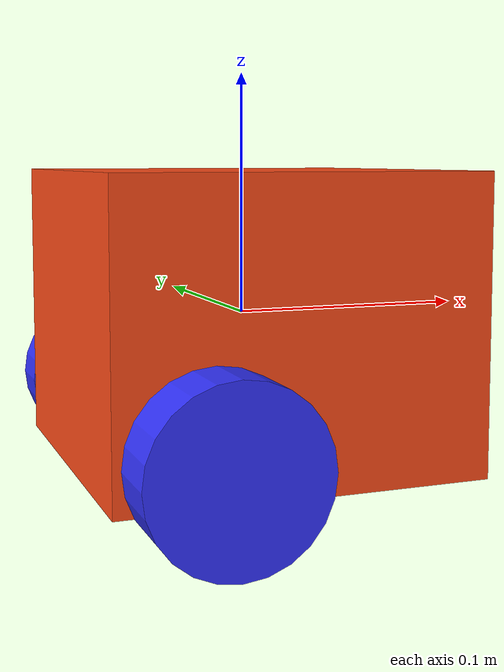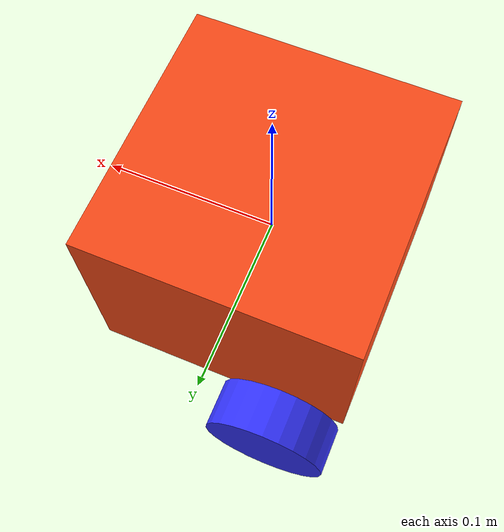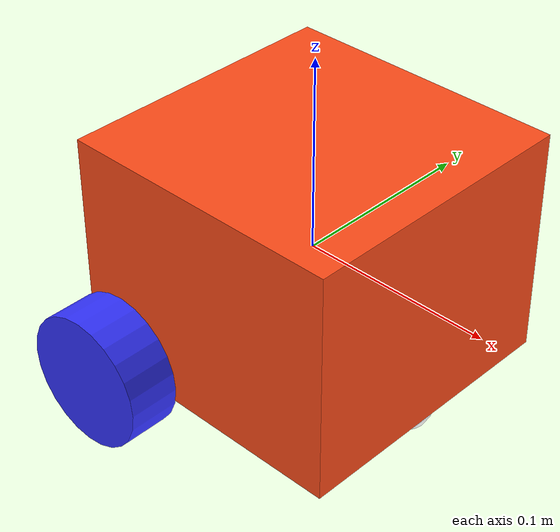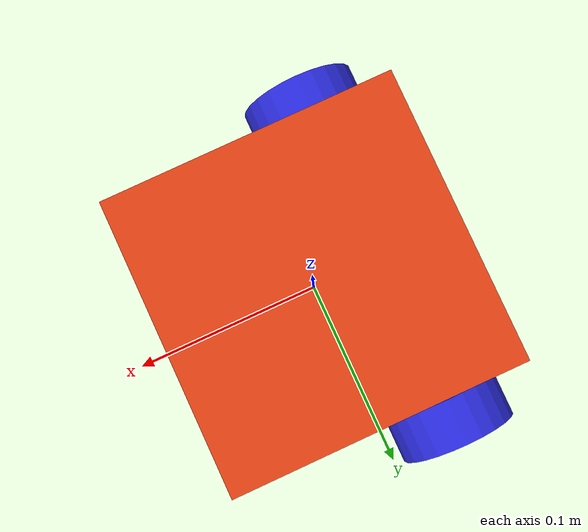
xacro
<?xml version="1.0"?>
<robot xmlns:xacro="http://www.ros.org/wiki/xacro" >

    <xacro:include filename="inertial_macros.xacro"/>

    <xacro:property name="chassis_length" value="0.15"/>
    <xacro:property name="chassis_width" value="0.15"/>
    <xacro:property name="chassis_height" value="0.12"/>
    <xacro:property name="chassis_mass" value="1.0"/>

    <xacro:property name="wheel_radius" value="0.034"/>
    <xacro:property name="wheel_thickness" value="0.026"/>
    <xacro:property name="wheel_mass" value="0.05"/>

    <xacro:property name="wheel_offset_x" value="0.04"/>
    <xacro:property name="wheel_offset_y" value="0.0975"/>
    <xacro:property name="wheel_offset_z" value="0.04"/>

    <xacro:property name="caster_wheel_mass" value="0.01"/>
    <xacro:property name="caster_wheel_offset_x" value="0.06"/>

    <material name="white">
        <color rgba="1 1 1 1" />
    </material>

    <material name="orange">
        <color rgba="1 0.3 0.1 1"/>
    </material>

    <material name="blue">
        <color rgba="0.2 0.2 1 1"/>
    </material>

    <material name="black">
        <color rgba="0 0 0 1"/>
    </material>

    <material name="red">
        <color rgba="1 0 0 1"/>
    </material>

    <material name="green">
        <color rgba="0 1 0 1"/>
    </material>

    <material name="brown">
        <color rgba="0.6 0.3 0.1 1"/>
    </material>

    <!-- BASE LINK -->

    <link name="base_link">

    </link>

    <!-- BASE_FOOTPRINT LINK -->

    <joint name="base_footprint_joint" type="fixed">
        <parent link="base_link"/>
        <child link="base_footprint"/>
        <origin xyz="0 0 ${-(wheel_radius+wheel_offset_z)}" rpy="0 0 0"/>
    </joint>

    <link name="base_footprint">
    </link>

    <!-- CHASSIS LINK -->

    <joint name="chassis_joint" type="fixed">
        <parent link="base_link"/>
        <child link="chassis"/>
        <origin xyz="0 0 0"/>
    </joint>

    <link name="chassis">
        <visual>
            <origin xyz="0 0 0"/>
            <geometry>
                <box size="${chassis_length} ${chassis_width} ${chassis_height}"/>
            </geometry>
            <material name="orange"/>
        </visual>
        <collision>
            <origin xyz="0 0 0"/>
            <geometry>
                <box size="${chassis_length} ${chassis_width} ${chassis_height}"/>
            </geometry>
        </collision>
        <xacro:inertial_box mass="${chassis_mass}" x="${chassis_length}" y="${chassis_width}" z="${chassis_height}">
            <origin xyz="0 0 0" rpy="0 0 0"/>
        </xacro:inertial_box>
    </link>

    <gazebo reference="chassis">
        <material>Gazebo/Orange</material>
    </gazebo>

    <!-- LEFT WHEEL LINK -->

    <joint name="left_wheel_joint" type="continuous">
        <parent link="base_link"/>
        <child link="left_wheel"/>
        <origin xyz="${-wheel_offset_x} ${wheel_offset_y} ${-wheel_offset_z}" rpy="0 0 0" />
        <axis xyz="0 1 0"/>
    </joint>

    <link name="left_wheel">
        <visual>
            <origin xyz="0 0 0" rpy="${pi/2} 0 0" />
            <geometry>
                <cylinder radius="${wheel_radius}" length="${wheel_thickness}"/>
            </geometry>
            <material name="blue"/>
        </visual>
        <collision>
            <geometry>
                <sphere radius="${wheel_radius}"/>
            </geometry>
        </collision>
        <xacro:inertial_cylinder mass="${wheel_mass}" length="${wheel_thickness}" radius="${wheel_radius}">
            <origin xyz="0 0 0" rpy="0 0 0"/>
        </xacro:inertial_cylinder>
    </link>

    <gazebo reference="left_wheel">
        <material>Gazebo/Blue</material>
    </gazebo>

    <!-- RIGHT WHEEL LINK -->

    <joint name="right_wheel_joint" type="continuous">
        <parent link="base_link"/>
        <child link="right_wheel"/>
        <origin xyz="${-wheel_offset_x} ${-wheel_offset_y} ${-wheel_offset_z}" rpy="0 0 0" />
        <axis xyz="0 1 0"/>
    </joint>

    <link name="right_wheel">
        <visual>
            <origin xyz="0 0 0" rpy="${pi/2} 0 0" />
            <geometry>
                <cylinder radius="${wheel_radius}" length="${wheel_thickness}"/>
            </geometry>
            <material name="blue"/>
        </visual>
        <collision>
            <geometry>
                <sphere radius="${wheel_radius}"/>
            </geometry>
        </collision>
        <xacro:inertial_cylinder mass="${wheel_mass}" length="${wheel_thickness}" radius="${wheel_radius}">
            <origin xyz="0 0 0" rpy="0 0 0"/>
        </xacro:inertial_cylinder>
    </link>

    <gazebo reference="right_wheel">
        <material>Gazebo/Blue</material>
    </gazebo>

    <!-- front CASTER WHEEL LINK -->

    <joint name="front_caster_wheel_joint" type="fixed">
        <parent link="base_link"/>
        <child link="front_caster_wheel"/>
        <origin xyz="${caster_wheel_offset_x} 0.0 ${-(chassis_height/2)}" rpy="0 0 0"/>
    </joint>

    <link name="front_caster_wheel">
        <visual>
            <geometry>
                <sphere radius="${(wheel_radius+wheel_offset_z-(chassis_height/2))}"/>
            </geometry>
            <material name="white"/>
        </visual>
        <collision>
            <geometry>
                <sphere radius="${(wheel_radius+wheel_offset_z-(chassis_height/2))}"/>
            </geometry>
        </collision>
        <xacro:inertial_sphere mass="${caster_wheel_mass}" radius="${(wheel_radius+wheel_offset_z-(chassis_height/2))}">
            <origin xyz="0 0 0" rpy="0 0 0"/>
        </xacro:inertial_sphere>
    </link>

    <gazebo reference="front_caster_wheel">
        <material>Gazebo/White</material>
        <mu1 value="0.001"/>
        <mu2 value="0.001"/>
    </gazebo>

</robot>
